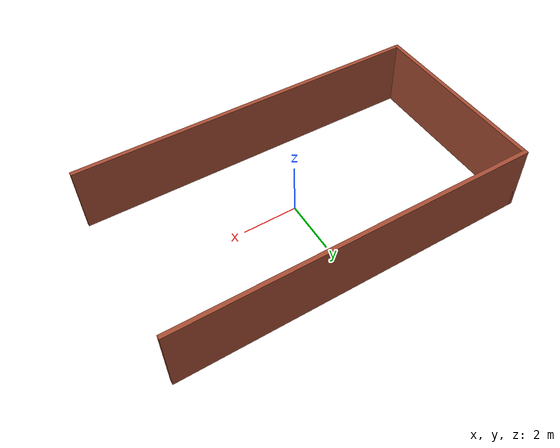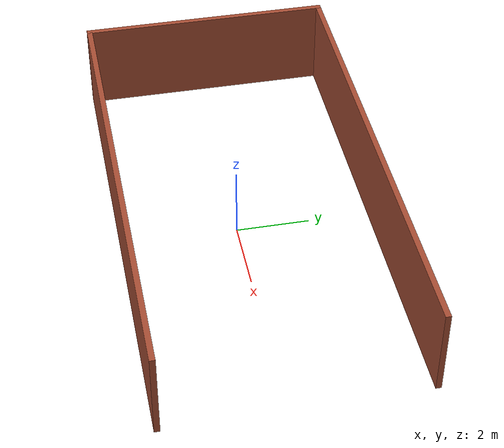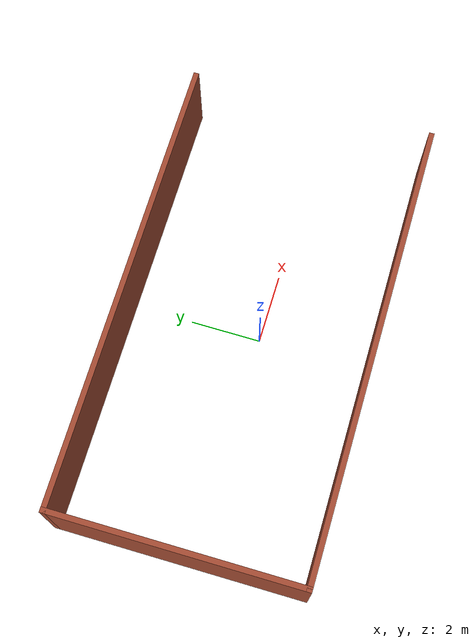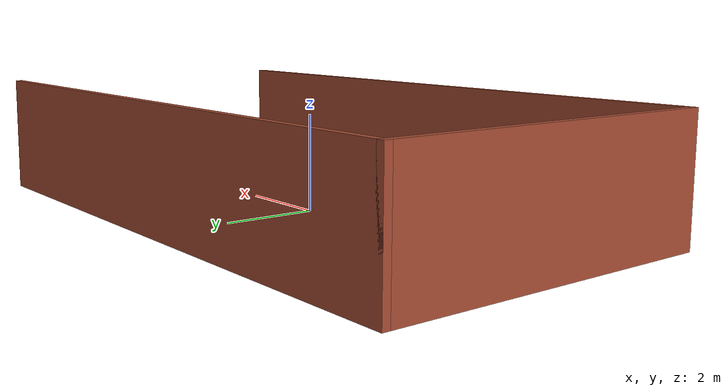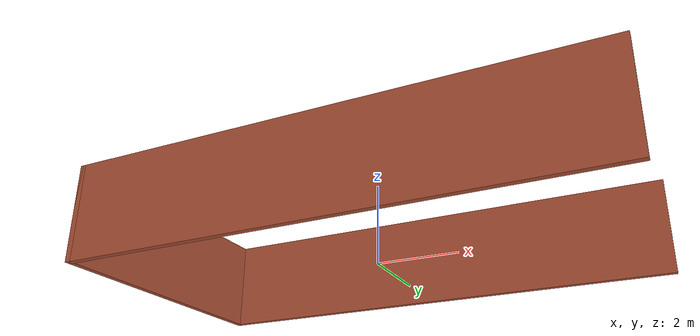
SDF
<?xml version='1.0'?>
<sdf version='1.7'>
  <model name='brick_walls1'>
    <pose>-0.105 0.305 0 0 -0 0</pose>
    <link name='Wall_11'>
      <collision name='Wall_11_Collision'>
        <geometry>
          <box>
            <size>7 0.15 2.5</size>
          </box>
        </geometry>
        <pose>0 0 1.25 0 -0 0</pose>
      </collision>
      <visual name='Wall_11_Visual'>
        <pose>0 0 1.25 0 -0 0</pose>
        <geometry>
          <box>
            <size>7 0.15 2.5</size>
          </box>
        </geometry>
        <material>
          <script>
            <uri>file://media/materials/scripts/gazebo.material</uri>
            <name>Gazebo/Bricks</name>
          </script>
          <ambient>1 1 1 1</ambient>
        </material>
        <meta>
          <layer>0</layer>
        </meta>
      </visual>
      <pose>-6.425 -0 0 0 -0 -1.5708</pose>
    </link>
    <link name='Wall_3'>
      <collision name='Wall_3_Collision'>
        <geometry>
          <box>
            <size>13 0.15 2.5</size>
          </box>
        </geometry>
        <pose>0 0 1.25 0 -0 0</pose>
      </collision>
      <visual name='Wall_3_Visual'>
        <pose>0 0 1.25 0 -0 0</pose>
        <geometry>
          <box>
            <size>13 0.15 2.5</size>
          </box>
        </geometry>
        <material>
          <script>
            <uri>file://media/materials/scripts/gazebo.material</uri>
            <name>Gazebo/Bricks</name>
          </script>
          <ambient>1 1 1 1</ambient>
        </material>
        <meta>
          <layer>0</layer>
        </meta>
      </visual>
      <pose>0 -3.425 0 0 -0 0</pose>
    </link>
    <link name='Wall_7'>
      <collision name='Wall_7_Collision'>
        <geometry>
          <box>
            <size>13 0.15 2.5</size>
          </box>
        </geometry>
        <pose>0 0 1.25 0 -0 0</pose>
      </collision>
      <visual name='Wall_7_Visual'>
        <pose>0 0 1.25 0 -0 0</pose>
        <geometry>
          <box>
            <size>13 0.15 2.5</size>
          </box>
        </geometry>
        <material>
          <script>
            <uri>file://media/materials/scripts/gazebo.material</uri>
            <name>Gazebo/Bricks</name>
          </script>
          <ambient>1 1 1 1</ambient>
        </material>
        <meta>
          <layer>0</layer>
        </meta>
      </visual>
      <pose>0 3.425 0 0 -0 0</pose>
    </link>
    <static>1</static>
  </model>
</sdf>
